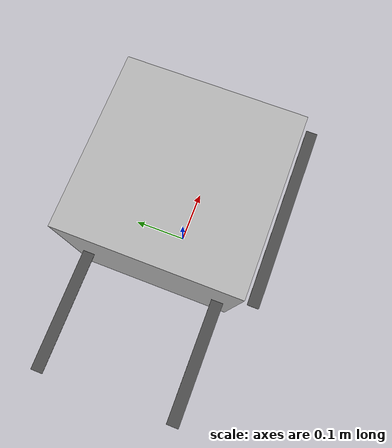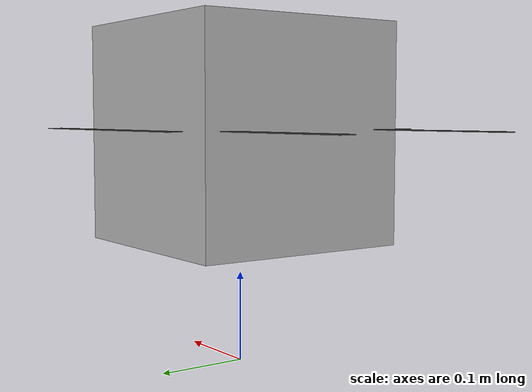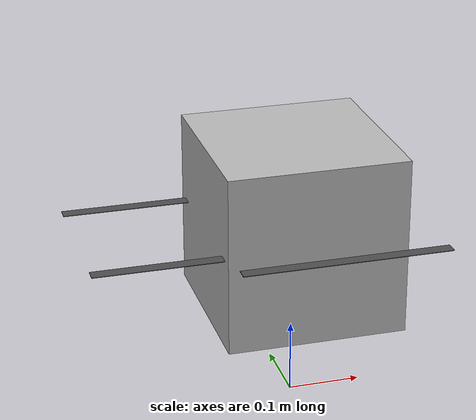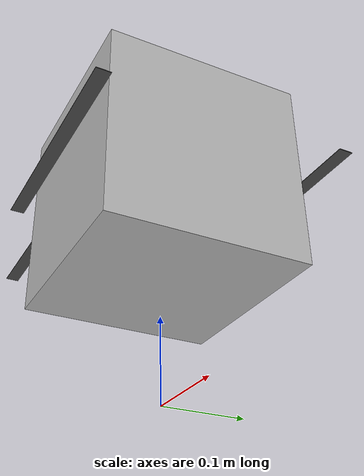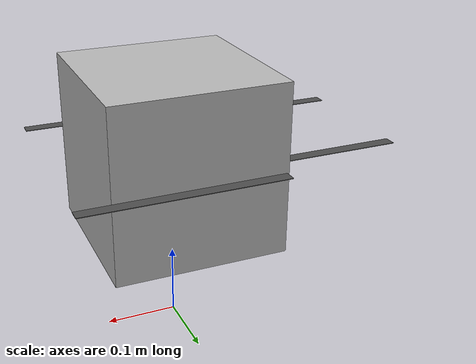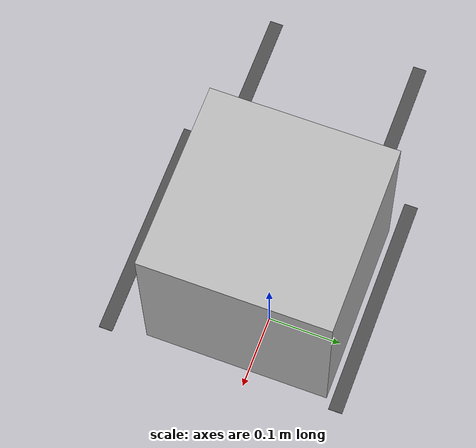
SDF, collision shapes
<?xml version="1.0" encoding="UTF-8"?>
<sdf version='1.9'>
  <model name='nde_drone_base'>
    <pose>0 0 .24 0 0 0</pose>
    <self_collide>false</self_collide>
    <static>false</static>
    <link name="base_link">
      <inertial>
        <mass>0.88674</mass>
        <inertia>
          <ixx>0.00384</ixx>
          <ixy>0</ixy>
          <ixz>0</ixz>
          <iyy>0.00445</iyy>
          <iyz>0</iyz>
          <izz>0.00736</izz>
        </inertia>
      </inertial>
      <gravity>true</gravity>
      <velocity_decay />
      <visual name="base_link_visual">
        <pose>0 0 0 0 0 0</pose>
        <geometry>
          <mesh>
            <scale>1 1 1</scale>
            <uri>meshes/tbsv6_frame.stl</uri>
          </mesh>
        </geometry>
      </visual>
      <visual name="5010_motor_base_0">
        <pose>0.029868 -0.145252 0.020 0 0 0</pose>
        <geometry>
          <mesh>
            <scale>1 1 1</scale>
            <uri>meshes/motor_vis.stl</uri>
          </mesh>
        </geometry>
      </visual>
      <visual name="5010_motor_base_1">
        <pose>-0.151792 0.095197 0.020 0 0 0</pose>
        <geometry>
          <mesh>
            <scale>1 1 1</scale>
            <uri>meshes/motor_vis.stl</uri>
          </mesh>
        </geometry>
      </visual>
      <visual name="5010_motor_base_2">
        <pose>0.031745 0.145101 0.020 0 0 0</pose>
        <geometry>
          <mesh>
            <scale>1 1 1</scale>
            <uri>meshes/motor_vis.stl</uri>
          </mesh>
        </geometry>
      </visual>
      <visual name="5010_motor_base_3">
        <pose>-0.150606 -0.097140 0.020 0 0 0</pose>
        <geometry>
          <mesh>
            <scale>1 1 1</scale>
            <uri>meshes/motor_vis.stl</uri>
          </mesh>
        </geometry>
      </visual>
      <collision name="base_link_collision_0">
        <pose>0 0 .015 0 0 0</pose>
        <geometry>
          <box>
            <size>0.24 0.24 0.24</size>
          </box>
        </geometry>
        <surface>
          <contact>
            <ode>
              <min_depth>0.001</min_depth>
              <max_vel>0</max_vel>
            </ode>
          </contact>
          <friction>
            <ode />
          </friction>
        </surface>
      </collision>
      <collision name="base_link_collision_1">
        <pose>0.08 -0.08 0 0 0 0</pose>
        <geometry>
          <box>
            <size>0.02 0.02 0.02</size>
          </box>
        </geometry>
        <surface>
          <contact>
            <ode>
              <min_depth>0.001</min_depth>
              <max_vel>0</max_vel>
            </ode>
          </contact>
          <friction>
            <ode />
          </friction>
        </surface>
      </collision>
      <collision name="base_link_collision_2">
        <pose>-0.08 0.08 0 0 0 0</pose>
        <geometry>
          <box>
            <size>0.02 0.02 0.02</size>
          </box>
        </geometry>
        <surface>
          <contact>
            <ode>
              <min_depth>0.001</min_depth>
              <max_vel>0</max_vel>
            </ode>
          </contact>
          <friction>
            <ode />
          </friction>
        </surface>
      </collision>
      <collision name="base_link_collision_3">
        <pose>0.08 0.08 0 0 0 0</pose>
        <geometry>
          <box>
            <size>0.02 0.02 0.02</size>
          </box>
        </geometry>
        <surface>
          <contact>
            <ode>
              <min_depth>0.001</min_depth>
              <max_vel>0</max_vel>
            </ode>
          </contact>
          <friction>
            <ode />
          </friction>
        </surface>
      </collision>
      <collision name="base_link_collision_4">
        <pose>-0.08 -0.08 0 0 0 0</pose>
        <geometry>
          <box>
            <size>0.02 0.02 0.02</size>
          </box>
        </geometry>
        <surface>
          <contact>
            <ode>
              <min_depth>0.001</min_depth>
              <max_vel>0</max_vel>
            </ode>
          </contact>
          <friction>
            <ode />
          </friction>
        </surface>
      </collision>
      <sensor name="air_pressure_sensor" type="air_pressure">
        <gz_frame_id>base_link</gz_frame_id>
        <always_on>1</always_on>
        <update_rate>50</update_rate>
        <air_pressure>
          <!-- Noise modeled after BMP390 -->
          <pressure>
            <noise type="gaussian">
              <mean>0</mean>
              <stddev>3</stddev>
            </noise>
          </pressure>
        </air_pressure>
      </sensor>
      <sensor name="magnetometer_sensor" type="magnetometer">
        <gz_frame_id>base_link</gz_frame_id>
        <always_on>1</always_on>
        <update_rate>100</update_rate>
        <magnetometer>
          <x>
            <noise type="gaussian">
              <stddev>0.0001</stddev>
            </noise>
          </x>
          <y>
            <noise type="gaussian">
              <stddev>0.0001</stddev>
            </noise>
          </y>
          <z>
            <noise type="gaussian">
              <stddev>0.0001</stddev>
            </noise>
          </z>
        </magnetometer>
      </sensor>
      <sensor name="imu_sensor" type="imu">
        <gz_frame_id>base_link</gz_frame_id>
        <always_on>1</always_on>
        <update_rate>250</update_rate>
        <imu>
          <angular_velocity>
            <x>
              <noise type="gaussian">
                <mean>0.0</mean>
                <stddev>0.0008726646</stddev>
              </noise>
            </x>
            <y>
              <noise type="gaussian">
                <mean>0.0</mean>
                <stddev>0.0008726646</stddev>
              </noise>
            </y>
            <z>
              <noise type="gaussian">
                <mean>0.0</mean>
                <stddev>0.0008726646</stddev>
              </noise>
            </z>
          </angular_velocity>
          <linear_acceleration>
            <x>
              <noise type="gaussian">
                <mean>0.0</mean>
                <stddev>0.00637</stddev>
              </noise>
            </x>
            <y>
              <noise type="gaussian">
                <mean>0.0</mean>
                <stddev>0.00637</stddev>
              </noise>
            </y>
            <z>
              <noise type="gaussian">
                <mean>0.0</mean>
                <stddev>0.00686</stddev>
              </noise>
            </z>
          </linear_acceleration>
        </imu>
      </sensor>
      <sensor name="navsat_sensor" type="navsat">
        <gz_frame_id>base_link</gz_frame_id>
        <always_on>1</always_on>
        <update_rate>30</update_rate>
      </sensor>
    </link>
    <!-- Battery -->
    <link name="battery_link">
      <pose>0.000 0.002 0.055 0 0 0</pose>
      <inertial>
        <mass>0.001</mass>
        <inertia>
          <ixx>0.00046</ixx>
          <iyy>0.00138</iyy>
          <izz>0.00154</izz>
          <ixy>0</ixy>
          <ixz>0</ixz>
          <iyz>0</iyz>
        </inertia>
      </inertial>
      <visual name="battery_visual">
        <pose>0.000 0.002 0.055 0 0 0</pose>
        <geometry>
          <mesh>
            <uri>meshes/battery_vis.stl</uri>
          </mesh>
        </geometry>
      </visual>
      <collision name="battery_collision">
        <geometry>
          <box>
            <size>0.139 0.047 0.037</size>
          </box>
        </geometry>
      </collision>
    </link>
    <joint name="battery_joint" type="fixed">
      <parent>base_link</parent>
      <child>battery_link</child>
      <pose>0 0 0 0 0 0</pose>
    </joint>
    <!-- H-Flow -->
    <link name="hflow_link">
      <pose>0.066 0.000 -0.009 0 0 0</pose>
      <inertial>
        <mass>0.0001</mass>
        <inertia>
          <ixx>0.0000005</ixx>
          <iyy>0.0000007</iyy>
          <izz>0.0000005</izz>
          <ixy>0</ixy>
          <ixz>0</ixz>
          <iyz>0</iyz>
        </inertia>
      </inertial>
      <visual name="hflow_visual">
      <pose>0.063 0 -0.0015 0 0 0</pose>
        <geometry>
          <mesh>
            <uri>meshes/h-flow3.stl</uri>
          </mesh>
        </geometry>
      </visual>
      <collision name="hflow_collision">
        <geometry>
          <box>
            <size>0.041 0.035 0.014</size>
          </box>
        </geometry>
      </collision>
    </link>
    <joint name="hflow_joint" type="fixed">
      <parent>base_link</parent>
      <child>hflow_link</child>
      <pose>0 0 0 0 0 0</pose>
    </joint>
    <!-- Camera -->
    <link name="camera_link">
      <pose>0.070 0.000 0.013 0 0 0</pose>
      <inertial>
        <mass>0.0001</mass>
        <inertia>
          <ixx>0.0000003</ixx>
          <iyy>0.0000003</iyy>
          <izz>0.0000003</izz>
          <ixy>0</ixy>
          <ixz>0</ixz>
          <iyz>0</iyz>
        </inertia>
      </inertial>
      <visual name="camera_visual">
      <pose>0.079 0 0 0 0 0</pose>
        <geometry>
          <mesh>
            <uri>meshes/Camera3.stl</uri>
          </mesh>
        </geometry>
      </visual>
      <collision name="camera_collision">
        <geometry>
          <box>
            <size>0.020 0.020 0.020</size>
          </box>
        </geometry>
      </collision>
    </link>
    <joint name="camera_joint" type="fixed">
      <parent>base_link</parent>
      <child>camera_link</child>
      <pose>0 0 0 0 0 0</pose>
    </joint>
    <!-- Electronics Core -->
    <link name="eleccore_link">
      <pose>0.006 0.000 0.021 0 0 0</pose>
      <inertial>
        <mass>0.0001</mass>
        <inertia>
          <ixx>0.0000005</ixx>
          <iyy>0.0000007</iyy>
          <izz>0.0000005</izz>
          <ixy>0</ixy>
          <ixz>0</ixz>
          <iyz>0</iyz>
        </inertia>
      </inertial>
      <visual name="eleccore_visual">
      <pose>0 0 0 0 0 0</pose>
        <geometry>
          <mesh>
            <uri>meshes/eleccore.stl</uri>
          </mesh>
        </geometry>
      </visual>
      <collision name="eleccore_collision">
        <geometry>
          <box>
            <size>0.041 0.035 0.014</size>
          </box>
        </geometry>
      </collision>
    </link>
    <joint name="eleccore_joint" type="fixed">
      <parent>base_link</parent>
      <child>eleccore_link</child>
      <pose>0 0 0 0 0 0</pose>
    </joint>
        <!-- SiK Radio -->
    <link name="sik_link">
      <pose>-0.043 -0.029 0.060 -1.5708 0 0</pose>
      <inertial>
        <mass>0.0001</mass>
        <inertia>
          <ixx>0.0000005</ixx>
          <iyy>0.0000007</iyy>
          <izz>0.0000005</izz>
          <ixy>0</ixy>
          <ixz>0</ixz>
          <iyz>0</iyz>
        </inertia>
      </inertial>
      <visual name="sik_visual">
      <pose>0 0 0 0 0 0</pose>
        <geometry>
          <mesh>
            <uri>meshes/SiK_sdf.stl</uri>
          </mesh>
        </geometry>
      </visual>
      <collision name="sik_collision">
        <geometry>
          <box>
            <size>0.041 0.035 0.014</size>
          </box>
        </geometry>
      </collision>
    </link>
    <joint name="sik_joint" type="fixed">
      <parent>base_link</parent>
      <child>sik_link</child>
      <pose>0 0 0 0 0 0</pose>
    </joint>
        <!-- VTX -->
    <link name="vtx_link">
      <pose>-0.055 0.0265 0.060 1.5708 0 0</pose>
      <inertial>
        <mass>0.0001</mass>
        <inertia>
          <ixx>0.0000005</ixx>
          <iyy>0.0000007</iyy>
          <izz>0.0000005</izz>
          <ixy>0</ixy>
          <ixz>0</ixz>
          <iyz>0</iyz>
        </inertia>
      </inertial>
      <visual name="vtx_visual">
      <pose>0 0 0 0 0 0</pose>
        <geometry>
          <mesh>
            <uri>meshes/vtx_sdf.stl</uri>
          </mesh>
        </geometry>
      </visual>
      <collision name="vtx_collision">
        <geometry>
          <box>
            <size>0.041 0.035 0.014</size>
          </box>
        </geometry>
      </collision>
    </link>
    <joint name="vtx_joint" type="fixed">
      <parent>base_link</parent>
      <child>vtx_link</child>
      <pose>0 0 0 0 0 0</pose>
    </joint>
        <!-- RP1 -->
    <link name="rp1_link">
      <pose>-0.042 0.037 0.007 0 0 0</pose>
      <inertial>
        <mass>0.0001</mass>
        <inertia>
          <ixx>0.0000005</ixx>
          <iyy>0.0000007</iyy>
          <izz>0.0000005</izz>
          <ixy>0</ixy>
          <ixz>0</ixz>
          <iyz>0</iyz>
        </inertia>
      </inertial>
      <visual name="rp1_visual">
      <pose>0 0 0 0 0 0</pose>
        <geometry>
          <mesh>
            <uri>meshes/rp1_sdf.stl</uri>
          </mesh>
        </geometry>
      </visual>
      <collision name="rp1_collision">
        <geometry>
          <box>
            <size>0.041 0.035 0.014</size>
          </box>
        </geometry>
      </collision>
    </link>
    <joint name="rp1_joint" type="fixed">
      <parent>base_link</parent>
      <child>rp1_link</child>
      <pose>0 0 0 0 0 0</pose>
    </joint>
    <link name="rotor_0">
      <gravity>true</gravity>
      <self_collide>false</self_collide>
      <velocity_decay />
      <pose>0.029868 -0.145252 0.020000 0 0 0</pose>
      <inertial>
        <mass>0.0066</mass>
        <inertia>
          <ixx>0.000001</ixx>
          <iyy>0.000001</iyy>
          <izz>0.000002</izz>
        </inertia>
      </inertial>
      <visual name="rotor_0_visual">
        <pose>-0.012 -0.078 -0.008 0 0 0</pose>
        <geometry>
          <mesh>
            <scale>0.46 0.46 0.46</scale>
            <uri>model://x500_base/meshes/1345_prop_ccw.stl</uri>
          </mesh>
        </geometry>
        <material>
          <script>
            <name>Gazebo/DarkGrey</name>
            <uri>file://media/materials/scripts/gazebo.material</uri>
          </script>
        </material>
      </visual>
      <collision name="rotor_0_collision">
        <pose>0 0 0 0 0 0 </pose>
        <geometry>
          <box>
            <size>0.2792307692307692 0.016923076923076923 0.0008461538461538462</size>
          </box>
        </geometry>
        <surface>
          <contact>
            <ode>
              <min_depth>0.001</min_depth>
              <max_vel>0</max_vel>
            </ode>
          </contact>
          <friction>
            <ode />
          </friction>
        </surface>
      </collision>
    </link>
    <joint name="rotor_0_joint" type="revolute">
      <parent>base_link</parent>
      <child>rotor_0</child>
      <axis>
        <xyz>0 0 1</xyz>
        <limit>
          <lower>-1e+16</lower>
          <upper>1e+16</upper>
        </limit>
        <dynamics>
          <spring_reference>0</spring_reference>
          <spring_stiffness>0</spring_stiffness>
        </dynamics>
      </axis>
    </joint>
    <link name="rotor_1">
      <gravity>true</gravity>
      <self_collide>false</self_collide>
      <velocity_decay />
      <pose>-0.151792 0.095197 0.020000 0 0 0</pose>
      <inertial>
        <mass>0.0066</mass>
        <inertia>
          <ixx>0.000001</ixx>
          <iyy>0.000001</iyy>
          <izz>0.000002</izz>
        </inertia>
      </inertial>
      <visual name="rotor_1_visual">
        <pose>-0.012 -0.078 -0.008 0 0 0</pose>
        <geometry>
          <mesh>
            <scale>0.46 0.46 0.46</scale>
            <uri>model://x500_base/meshes/1345_prop_ccw.stl</uri>
          </mesh>
        </geometry>
        <material>
          <script>
            <name>Gazebo/DarkGrey</name>
            <uri>file://media/materials/scripts/gazebo.material</uri>
          </script>
        </material>
      </visual>
      <collision name="rotor_1_collision">
        <pose>0 0 0 0 0 0 </pose>
        <geometry>
          <box>
            <size>0.2792307692307692 0.016923076923076923 0.0008461538461538462</size>
          </box>
        </geometry>
        <surface>
          <contact>
            <ode>
              <min_depth>0.001</min_depth>
              <max_vel>0</max_vel>
            </ode>
          </contact>
          <friction>
            <ode />
          </friction>
        </surface>
      </collision>
    </link>
    <joint name="rotor_1_joint" type="revolute">
      <parent>base_link</parent>
      <child>rotor_1</child>
      <axis>
        <xyz>0 0 1</xyz>
        <limit>
          <lower>-1e+16</lower>
          <upper>1e+16</upper>
        </limit>
        <dynamics>
          <spring_reference>0</spring_reference>
          <spring_stiffness>0</spring_stiffness>
        </dynamics>
      </axis>
    </joint>
    <link name="rotor_2">
      <gravity>true</gravity>
      <self_collide>false</self_collide>
      <velocity_decay />
      <pose>0.031745 0.145101 0.020000 0 0 0</pose>
      <inertial>
        <mass>0.0066</mass>
        <inertia>
          <ixx>0.000001</ixx>
          <iyy>0.000001</iyy>
          <izz>0.000002</izz>
        </inertia>
      </inertial>
      <visual name="rotor_2_visual">
        <pose>-0.012 -0.078 -0.008 0 0 0</pose>
        <geometry>
          <mesh>
            <scale>0.46 0.46 0.46</scale>
            <uri>model://x500_base/meshes/1345_prop_cw.stl</uri>
          </mesh>
        </geometry>
        <material>
          <script>
            <name>Gazebo/DarkGrey</name>
            <uri>file://media/materials/scripts/gazebo.material</uri>
          </script>
        </material>
      </visual>
      <collision name="rotor_2_collision">
        <pose>0 0 0 0 0 0 </pose>
        <geometry>
          <box>
            <size>0.2792307692307692 0.016923076923076923 0.0008461538461538462</size>
          </box>
        </geometry>
        <surface>
          <contact>
            <ode>
              <min_depth>0.001</min_depth>
              <max_vel>0</max_vel>
            </ode>
          </contact>
          <friction>
            <ode />
          </friction>
        </surface>
      </collision>
    </link>
    <joint name="rotor_2_joint" type="revolute">
      <parent>base_link</parent>
      <child>rotor_2</child>
      <axis>
        <xyz>0 0 1</xyz>
        <limit>
          <lower>-1e+16</lower>
          <upper>1e+16</upper>
        </limit>
        <dynamics>
          <spring_reference>0</spring_reference>
          <spring_stiffness>0</spring_stiffness>
        </dynamics>
      </axis>
    </joint>
    <link name="rotor_3">
      <gravity>true</gravity>
      <self_collide>false</self_collide>
      <velocity_decay />
      <pose>-0.150606 -0.097140 0.020000 0 0 0</pose>
      <inertial>
        <mass>0.0066</mass>
        <inertia>
          <ixx>0.000001</ixx>
          <iyy>0.000001</iyy>
          <izz>0.000002</izz>
        </inertia>
      </inertial>
      <visual name="rotor_3_visual">
        <pose>-0.012 -0.078 -0.008 0 0 0</pose>
        <geometry>
          <mesh>
            <scale>0.46 0.46 0.46</scale>
            <uri>model://x500_base/meshes/1345_prop_cw.stl</uri>
          </mesh>
        </geometry>
        <material>
          <script>
            <name>Gazebo/DarkGrey</name>
            <uri>file://media/materials/scripts/gazebo.material</uri>
          </script>
        </material>
      </visual>
      <collision name="rotor_3_collision">
        <pose>0 0 0 0 0 0 </pose>
        <geometry>
          <box>
            <size>0.2792307692307692 0.016923076923076923 0.0008461538461538462</size>
          </box>
        </geometry>
        <surface>
          <contact>
            <ode>
              <min_depth>0.001</min_depth>
              <max_vel>0</max_vel>
            </ode>
          </contact>
          <friction>
            <ode />
          </friction>
        </surface>
      </collision>
    </link>
    <joint name="rotor_3_joint" type="revolute">
      <parent>base_link</parent>
      <child>rotor_3</child>
      <axis>
        <xyz>0 0 1</xyz>
        <limit>
          <lower>-1e+16</lower>
          <upper>1e+16</upper>
        </limit>
        <dynamics>
          <spring_reference>0</spring_reference>
          <spring_stiffness>0</spring_stiffness>
        </dynamics>
      </axis>
    </joint>
  </model>
</sdf>
